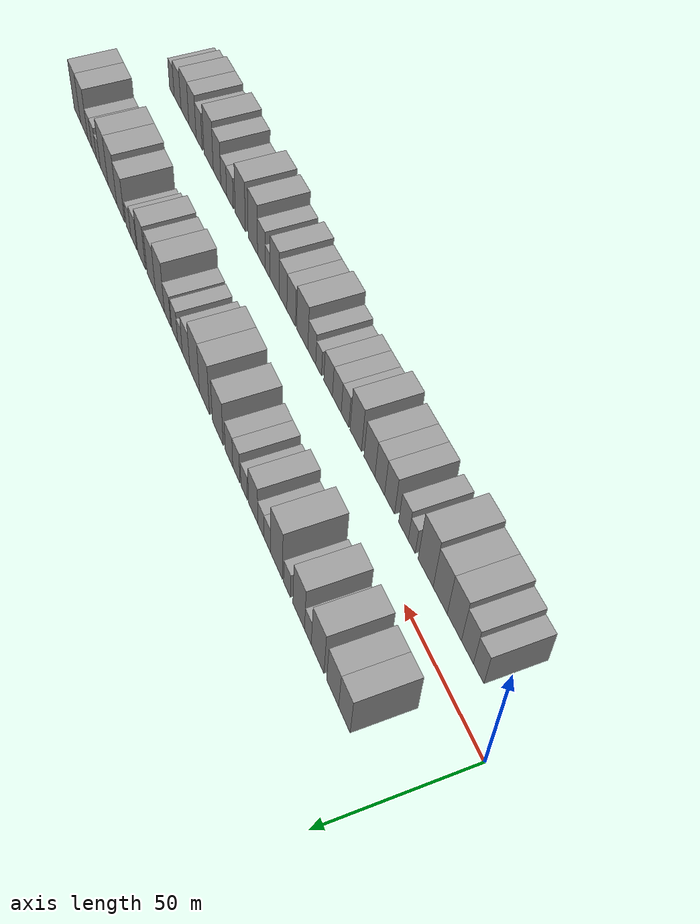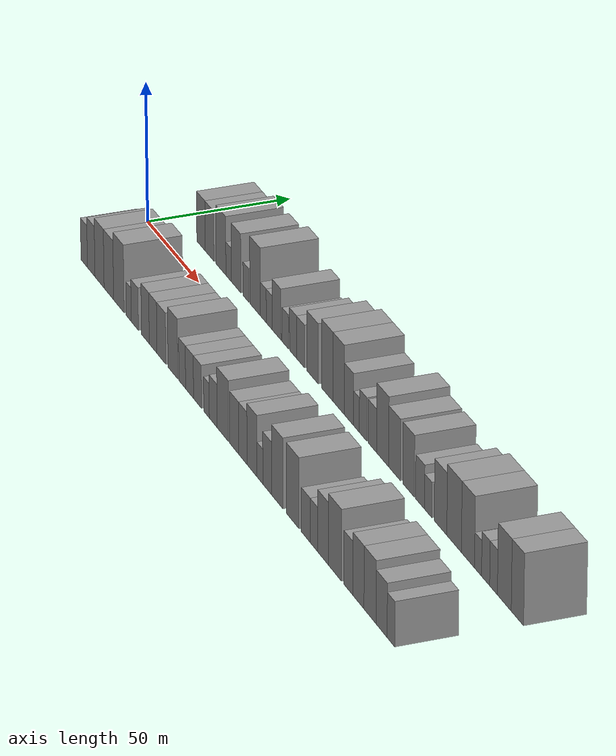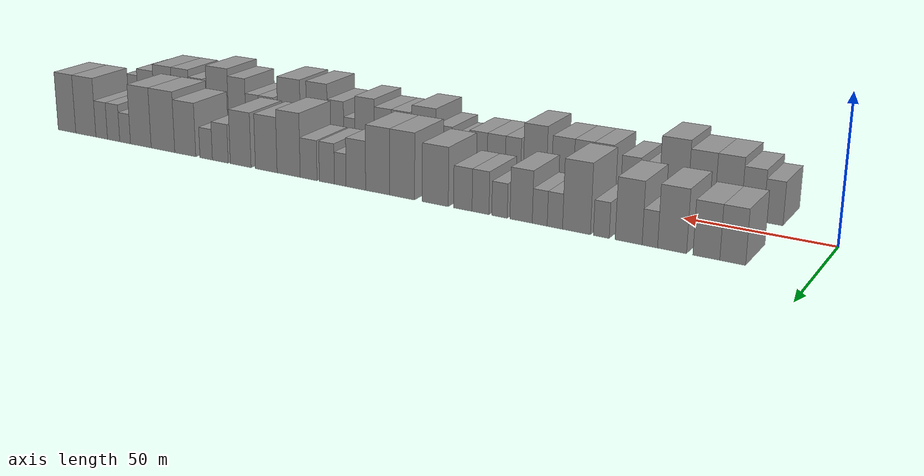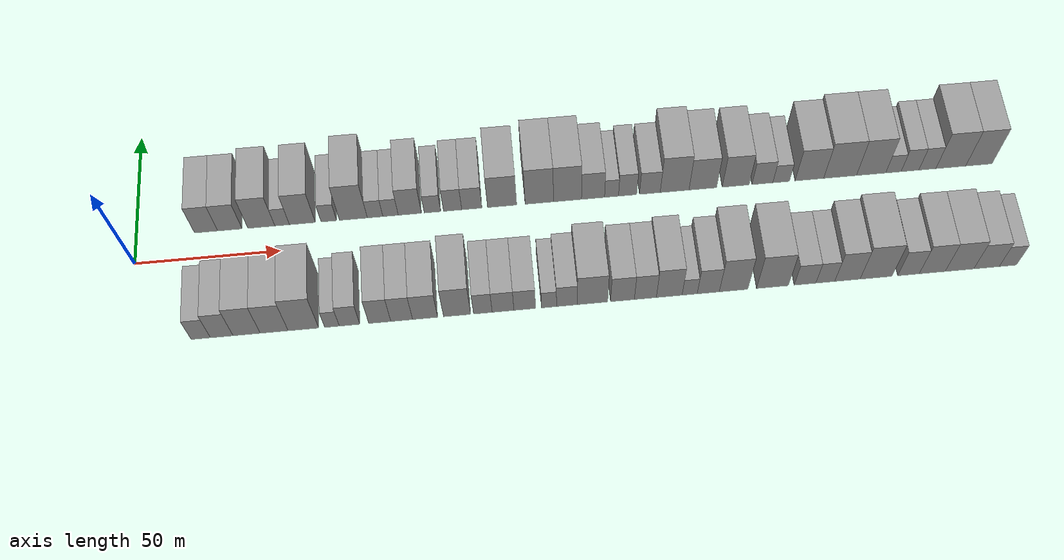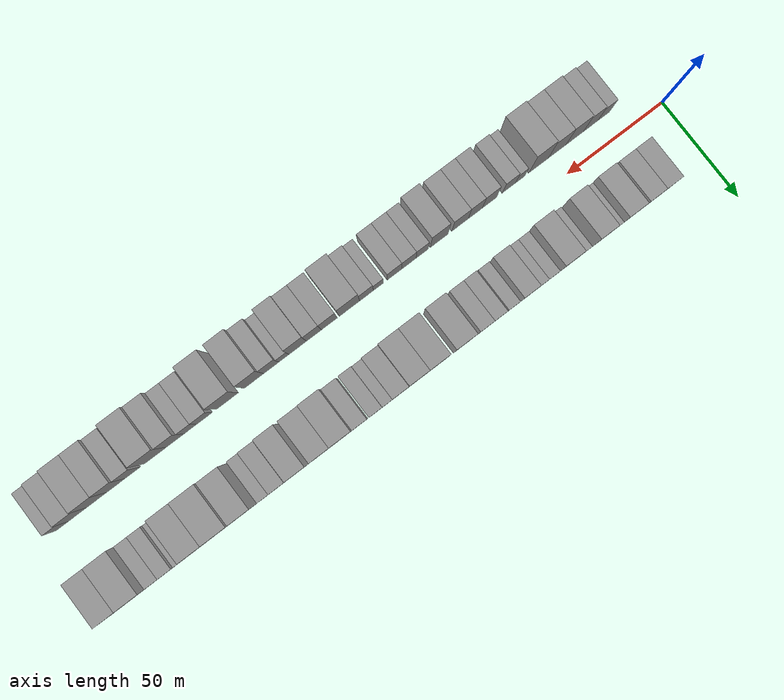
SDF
<sdf version="1.6">
 <world name="default">
  <scene>
   <sky><clouds><speed>12</speed></clouds></sky>
   <ambient>0.4 0.4 0.4 1</ambient>
   <background>0.7 0.7 0.7 1</background>
   <shadows>1</shadows>
  </scene>
  <gravity>0 0 -9.8066</gravity>
  <magnetic_field>6e-06 2.3e-05 -4.2e-05</magnetic_field>
  <physics default="0" name="default_physics" type="ode">
   <ode>
    <solver>
     <type>quick</type>
     <iters>10</iters>
     <sor>1.0</sor>
     <use_dynamic_moi_rescaling>0</use_dynamic_moi_rescaling>
    </solver>
    <constraints>
     <cfm>0</cfm>
     <erp>0.2</erp>
     <contact_max_correcting_vel>100</contact_max_correcting_vel>
     <contact_surface_layer>0.001</contact_surface_layer>
    </constraints>
   </ode>
   <max_step_size>0.004</max_step_size>
   <real_time_factor>1</real_time_factor>
   <real_time_update_rate>250</real_time_update_rate>
  </physics>
  <light name="sun" type="directional">
   <pose>0 0 10 0 0 0</pose>
   <diffuse>0.8 0.8 0.8 1</diffuse>
   <specular>0.2 0.2 0.2 1</specular>
   <attenuation>
    <range>1000</range>
    <constant>0.9</constant>
    <linear>0.01</linear>
    <quadratic>0.001</quadratic>
   </attenuation>
   <direction>-0.5 0.1 -0.9</direction>
  </light>
  <model name="building_1">
   <static>1</static>
   <pose>23.9908 20.0000 0 0.000000 0.000000 1.570796</pose>
   <link name="link">
    <pose>0 0 9.00 0 0 0</pose>
    <collision name="collision"><geometry><box><size>20.0000 7.9815 18.0000</size></box></geometry></collision>
    <visual name="visual">
     <cast_shadows>0</cast_shadows>
     <geometry><box><size>20.0000 7.9815 18.0000</size></box></geometry>
     <material>
      <script>
       <uri>model://grey_wall/materials/scripts</uri>
       <uri>model://grey_wall/materials/textures</uri>
       <name>vrc/grey_wall</name>
      </script>
     </material>
    </visual>
   </link>
  </model>
  <model name="building_2">
   <static>1</static>
   <pose>32.2059 20.0000 0 0.000000 0.000000 1.570796</pose>
   <link name="link">
    <pose>0 0 9.00 0 0 0</pose>
    <collision name="collision"><geometry><box><size>20.0000 8.4488 18.0000</size></box></geometry></collision>
    <visual name="visual">
     <cast_shadows>0</cast_shadows>
     <geometry><box><size>20.0000 8.4488 18.0000</size></box></geometry>
     <material>
      <script>
       <uri>model://grey_wall/materials/scripts</uri>
       <uri>model://grey_wall/materials/textures</uri>
       <name>vrc/grey_wall</name>
      </script>
     </material>
    </visual>
   </link>
  </model>
  <model name="building_3">
   <static>1</static>
   <pose>43.1120 20.0000 0 0.000000 0.000000 1.570796</pose>
   <link name="link">
    <pose>0 0 10.50 0 0 0</pose>
    <collision name="collision"><geometry><box><size>20.0000 9.3635 21.0000</size></box></geometry></collision>
    <visual name="visual">
     <cast_shadows>0</cast_shadows>
     <geometry><box><size>20.0000 9.3635 21.0000</size></box></geometry>
     <material>
      <script>
       <uri>model://grey_wall/materials/scripts</uri>
       <uri>model://grey_wall/materials/textures</uri>
       <name>vrc/grey_wall</name>
      </script>
     </material>
    </visual>
   </link>
  </model>
  <model name="building_4">
   <static>1</static>
   <pose>50.3294 20.0000 0 0.000000 0.000000 1.570796</pose>
   <link name="link">
    <pose>0 0 6.00 0 0 0</pose>
    <collision name="collision"><geometry><box><size>20.0000 5.0712 12.0000</size></box></geometry></collision>
    <visual name="visual">
     <cast_shadows>0</cast_shadows>
     <geometry><box><size>20.0000 5.0712 12.0000</size></box></geometry>
     <material>
      <script>
       <uri>model://grey_wall/materials/scripts</uri>
       <uri>model://grey_wall/materials/textures</uri>
       <name>vrc/grey_wall</name>
      </script>
     </material>
    </visual>
   </link>
  </model>
  <model name="building_5">
   <static>1</static>
   <pose>57.3656 20.0000 0 0.000000 0.000000 1.570796</pose>
   <link name="link">
    <pose>0 0 10.50 0 0 0</pose>
    <collision name="collision"><geometry><box><size>20.0000 9.0012 21.0000</size></box></geometry></collision>
    <visual name="visual">
     <cast_shadows>0</cast_shadows>
     <geometry><box><size>20.0000 9.0012 21.0000</size></box></geometry>
     <material>
      <script>
       <uri>model://grey_wall/materials/scripts</uri>
       <uri>model://grey_wall/materials/textures</uri>
       <name>vrc/grey_wall</name>
      </script>
     </material>
    </visual>
   </link>
  </model>
  <model name="building_6">
   <static>1</static>
   <pose>66.5707 20.0000 0 0.000000 0.000000 1.570796</pose>
   <link name="link">
    <pose>0 0 6.00 0 0 0</pose>
    <collision name="collision"><geometry><box><size>20.0000 5.4089 12.0000</size></box></geometry></collision>
    <visual name="visual">
     <cast_shadows>0</cast_shadows>
     <geometry><box><size>20.0000 5.4089 12.0000</size></box></geometry>
     <material>
      <script>
       <uri>model://grey_wall/materials/scripts</uri>
       <uri>model://grey_wall/materials/textures</uri>
       <name>vrc/grey_wall</name>
      </script>
     </material>
    </visual>
   </link>
  </model>
  <model name="building_7">
   <static>1</static>
   <pose>75.1345 20.0000 0 0.000000 0.000000 1.570796</pose>
   <link name="link">
    <pose>0 0 12.00 0 0 0</pose>
    <collision name="collision"><geometry><box><size>20.0000 9.7187 24.0000</size></box></geometry></collision>
    <visual name="visual">
     <cast_shadows>0</cast_shadows>
     <geometry><box><size>20.0000 9.7187 24.0000</size></box></geometry>
     <material>
      <script>
       <uri>model://grey_wall/materials/scripts</uri>
       <uri>model://grey_wall/materials/textures</uri>
       <name>vrc/grey_wall</name>
      </script>
     </material>
    </visual>
   </link>
  </model>
  <model name="building_8">
   <static>1</static>
   <pose>82.7058 20.0000 0 0.000000 0.000000 1.570796</pose>
   <link name="link">
    <pose>0 0 6.00 0 0 0</pose>
    <collision name="collision"><geometry><box><size>20.0000 5.4239 12.0000</size></box></geometry></collision>
    <visual name="visual">
     <cast_shadows>0</cast_shadows>
     <geometry><box><size>20.0000 5.4239 12.0000</size></box></geometry>
     <material>
      <script>
       <uri>model://grey_wall/materials/scripts</uri>
       <uri>model://grey_wall/materials/textures</uri>
       <name>vrc/grey_wall</name>
      </script>
     </material>
    </visual>
   </link>
  </model>
  <model name="building_9">
   <static>1</static>
   <pose>88.1032 20.0000 0 0.000000 0.000000 1.570796</pose>
   <link name="link">
    <pose>0 0 6.00 0 0 0</pose>
    <collision name="collision"><geometry><box><size>20.0000 5.3708 12.0000</size></box></geometry></collision>
    <visual name="visual">
     <cast_shadows>0</cast_shadows>
     <geometry><box><size>20.0000 5.3708 12.0000</size></box></geometry>
     <material>
      <script>
       <uri>model://grey_wall/materials/scripts</uri>
       <uri>model://grey_wall/materials/textures</uri>
       <name>vrc/grey_wall</name>
      </script>
     </material>
    </visual>
   </link>
  </model>
  <model name="building_10">
   <static>1</static>
   <pose>94.8376 20.0000 0 0.000000 0.000000 1.570796</pose>
   <link name="link">
    <pose>0 0 9.00 0 0 0</pose>
    <collision name="collision"><geometry><box><size>20.0000 8.0981 18.0000</size></box></geometry></collision>
    <visual name="visual">
     <cast_shadows>0</cast_shadows>
     <geometry><box><size>20.0000 8.0981 18.0000</size></box></geometry>
     <material>
      <script>
       <uri>model://grey_wall/materials/scripts</uri>
       <uri>model://grey_wall/materials/textures</uri>
       <name>vrc/grey_wall</name>
      </script>
     </material>
    </visual>
   </link>
  </model>
  <model name="building_11">
   <static>1</static>
   <pose>102.7686 20.0000 0 0.000000 0.000000 1.570796</pose>
   <link name="link">
    <pose>0 0 6.00 0 0 0</pose>
    <collision name="collision"><geometry><box><size>20.0000 5.7640 12.0000</size></box></geometry></collision>
    <visual name="visual">
     <cast_shadows>0</cast_shadows>
     <geometry><box><size>20.0000 5.7640 12.0000</size></box></geometry>
     <material>
      <script>
       <uri>model://grey_wall/materials/scripts</uri>
       <uri>model://grey_wall/materials/textures</uri>
       <name>vrc/grey_wall</name>
      </script>
     </material>
    </visual>
   </link>
  </model>
  <model name="building_12">
   <static>1</static>
   <pose>109.8444 20.0000 0 0.000000 0.000000 1.570796</pose>
   <link name="link">
    <pose>0 0 7.50 0 0 0</pose>
    <collision name="collision"><geometry><box><size>20.0000 6.3876 15.0000</size></box></geometry></collision>
    <visual name="visual">
     <cast_shadows>0</cast_shadows>
     <geometry><box><size>20.0000 6.3876 15.0000</size></box></geometry>
     <material>
      <script>
       <uri>model://grey_wall/materials/scripts</uri>
       <uri>model://grey_wall/materials/textures</uri>
       <name>vrc/grey_wall</name>
      </script>
     </material>
    </visual>
   </link>
  </model>
  <model name="building_13">
   <static>1</static>
   <pose>116.5820 20.0000 0 0.000000 0.000000 1.570796</pose>
   <link name="link">
    <pose>0 0 7.50 0 0 0</pose>
    <collision name="collision"><geometry><box><size>20.0000 7.0874 15.0000</size></box></geometry></collision>
    <visual name="visual">
     <cast_shadows>0</cast_shadows>
     <geometry><box><size>20.0000 7.0874 15.0000</size></box></geometry>
     <material>
      <script>
       <uri>model://grey_wall/materials/scripts</uri>
       <uri>model://grey_wall/materials/textures</uri>
       <name>vrc/grey_wall</name>
      </script>
     </material>
    </visual>
   </link>
  </model>
  <model name="building_14">
   <static>1</static>
   <pose>127.2377 20.0000 0 0.000000 0.000000 1.570796</pose>
   <link name="link">
    <pose>0 0 10.50 0 0 0</pose>
    <collision name="collision"><geometry><box><size>20.0000 10.2242 21.0000</size></box></geometry></collision>
    <visual name="visual">
     <cast_shadows>0</cast_shadows>
     <geometry><box><size>20.0000 10.2242 21.0000</size></box></geometry>
     <material>
      <script>
       <uri>model://grey_wall/materials/scripts</uri>
       <uri>model://grey_wall/materials/textures</uri>
       <name>vrc/grey_wall</name>
      </script>
     </material>
    </visual>
   </link>
  </model>
  <model name="building_15">
   <static>1</static>
   <pose>140.3518 20.0000 0 0.000000 0.000000 1.570796</pose>
   <link name="link">
    <pose>0 0 12.00 0 0 0</pose>
    <collision name="collision"><geometry><box><size>20.0000 10.0040 24.0000</size></box></geometry></collision>
    <visual name="visual">
     <cast_shadows>0</cast_shadows>
     <geometry><box><size>20.0000 10.0040 24.0000</size></box></geometry>
     <material>
      <script>
       <uri>model://grey_wall/materials/scripts</uri>
       <uri>model://grey_wall/materials/textures</uri>
       <name>vrc/grey_wall</name>
      </script>
     </material>
    </visual>
   </link>
  </model>
  <model name="building_16">
   <static>1</static>
   <pose>150.2946 20.0000 0 0.000000 0.000000 1.570796</pose>
   <link name="link">
    <pose>0 0 12.00 0 0 0</pose>
    <collision name="collision"><geometry><box><size>20.0000 9.8817 24.0000</size></box></geometry></collision>
    <visual name="visual">
     <cast_shadows>0</cast_shadows>
     <geometry><box><size>20.0000 9.8817 24.0000</size></box></geometry>
     <material>
      <script>
       <uri>model://grey_wall/materials/scripts</uri>
       <uri>model://grey_wall/materials/textures</uri>
       <name>vrc/grey_wall</name>
      </script>
     </material>
    </visual>
   </link>
  </model>
  <model name="building_17">
   <static>1</static>
   <pose>159.3237 20.0000 0 0.000000 0.000000 1.570796</pose>
   <link name="link">
    <pose>0 0 9.00 0 0 0</pose>
    <collision name="collision"><geometry><box><size>20.0000 8.1764 18.0000</size></box></geometry></collision>
    <visual name="visual">
     <cast_shadows>0</cast_shadows>
     <geometry><box><size>20.0000 8.1764 18.0000</size></box></geometry>
     <material>
      <script>
       <uri>model://grey_wall/materials/scripts</uri>
       <uri>model://grey_wall/materials/textures</uri>
       <name>vrc/grey_wall</name>
      </script>
     </material>
    </visual>
   </link>
  </model>
  <model name="building_18">
   <static>1</static>
   <pose>165.8892 20.0000 0 0.000000 0.000000 1.570796</pose>
   <link name="link">
    <pose>0 0 6.00 0 0 0</pose>
    <collision name="collision"><geometry><box><size>20.0000 4.9546 12.0000</size></box></geometry></collision>
    <visual name="visual">
     <cast_shadows>0</cast_shadows>
     <geometry><box><size>20.0000 4.9546 12.0000</size></box></geometry>
     <material>
      <script>
       <uri>model://grey_wall/materials/scripts</uri>
       <uri>model://grey_wall/materials/textures</uri>
       <name>vrc/grey_wall</name>
      </script>
     </material>
    </visual>
   </link>
  </model>
  <model name="building_19">
   <static>1</static>
   <pose>171.5991 20.0000 0 0.000000 0.000000 1.570796</pose>
   <link name="link">
    <pose>0 0 7.50 0 0 0</pose>
    <collision name="collision"><geometry><box><size>20.0000 6.4652 15.0000</size></box></geometry></collision>
    <visual name="visual">
     <cast_shadows>0</cast_shadows>
     <geometry><box><size>20.0000 6.4652 15.0000</size></box></geometry>
     <material>
      <script>
       <uri>model://grey_wall/materials/scripts</uri>
       <uri>model://grey_wall/materials/textures</uri>
       <name>vrc/grey_wall</name>
      </script>
     </material>
    </visual>
   </link>
  </model>
  <model name="building_20">
   <static>1</static>
   <pose>179.5096 20.0000 0 0.000000 0.000000 1.570796</pose>
   <link name="link">
    <pose>0 0 7.50 0 0 0</pose>
    <collision name="collision"><geometry><box><size>20.0000 7.3557 15.0000</size></box></geometry></collision>
    <visual name="visual">
     <cast_shadows>0</cast_shadows>
     <geometry><box><size>20.0000 7.3557 15.0000</size></box></geometry>
     <material>
      <script>
       <uri>model://grey_wall/materials/scripts</uri>
       <uri>model://grey_wall/materials/textures</uri>
       <name>vrc/grey_wall</name>
      </script>
     </material>
    </visual>
   </link>
  </model>
  <model name="building_21">
   <static>1</static>
   <pose>188.3211 20.0000 0 0.000000 0.000000 1.570796</pose>
   <link name="link">
    <pose>0 0 12.00 0 0 0</pose>
    <collision name="collision"><geometry><box><size>20.0000 10.2673 24.0000</size></box></geometry></collision>
    <visual name="visual">
     <cast_shadows>0</cast_shadows>
     <geometry><box><size>20.0000 10.2673 24.0000</size></box></geometry>
     <material>
      <script>
       <uri>model://grey_wall/materials/scripts</uri>
       <uri>model://grey_wall/materials/textures</uri>
       <name>vrc/grey_wall</name>
      </script>
     </material>
    </visual>
   </link>
  </model>
  <model name="building_22">
   <static>1</static>
   <pose>198.3743 20.0000 0 0.000000 0.000000 1.570796</pose>
   <link name="link">
    <pose>0 0 10.50 0 0 0</pose>
    <collision name="collision"><geometry><box><size>20.0000 9.8392 21.0000</size></box></geometry></collision>
    <visual name="visual">
     <cast_shadows>0</cast_shadows>
     <geometry><box><size>20.0000 9.8392 21.0000</size></box></geometry>
     <material>
      <script>
       <uri>model://grey_wall/materials/scripts</uri>
       <uri>model://grey_wall/materials/textures</uri>
       <name>vrc/grey_wall</name>
      </script>
     </material>
    </visual>
   </link>
  </model>
  <model name="building_23">
   <static>1</static>
   <pose>210.1101 20.0000 0 0.000000 0.000000 1.570796</pose>
   <link name="link">
    <pose>0 0 10.50 0 0 0</pose>
    <collision name="collision"><geometry><box><size>20.0000 9.6324 21.0000</size></box></geometry></collision>
    <visual name="visual">
     <cast_shadows>0</cast_shadows>
     <geometry><box><size>20.0000 9.6324 21.0000</size></box></geometry>
     <material>
      <script>
       <uri>model://grey_wall/materials/scripts</uri>
       <uri>model://grey_wall/materials/textures</uri>
       <name>vrc/grey_wall</name>
      </script>
     </material>
    </visual>
   </link>
  </model>
  <model name="building_24">
   <static>1</static>
   <pose>219.6738 20.0000 0 0.000000 0.000000 1.570796</pose>
   <link name="link">
    <pose>0 0 7.50 0 0 0</pose>
    <collision name="collision"><geometry><box><size>20.0000 7.4949 15.0000</size></box></geometry></collision>
    <visual name="visual">
     <cast_shadows>0</cast_shadows>
     <geometry><box><size>20.0000 7.4949 15.0000</size></box></geometry>
     <material>
      <script>
       <uri>model://grey_wall/materials/scripts</uri>
       <uri>model://grey_wall/materials/textures</uri>
       <name>vrc/grey_wall</name>
      </script>
     </material>
    </visual>
   </link>
  </model>
  <model name="building_25">
   <static>1</static>
   <pose>226.4071 20.0000 0 0.000000 0.000000 1.570796</pose>
   <link name="link">
    <pose>0 0 6.00 0 0 0</pose>
    <collision name="collision"><geometry><box><size>20.0000 5.9717 12.0000</size></box></geometry></collision>
    <visual name="visual">
     <cast_shadows>0</cast_shadows>
     <geometry><box><size>20.0000 5.9717 12.0000</size></box></geometry>
     <material>
      <script>
       <uri>model://grey_wall/materials/scripts</uri>
       <uri>model://grey_wall/materials/textures</uri>
       <name>vrc/grey_wall</name>
      </script>
     </material>
    </visual>
   </link>
  </model>
  <model name="building_26">
   <static>1</static>
   <pose>236.5378 20.0000 0 0.000000 0.000000 1.570796</pose>
   <link name="link">
    <pose>0 0 10.50 0 0 0</pose>
    <collision name="collision"><geometry><box><size>20.0000 10.2896 21.0000</size></box></geometry></collision>
    <visual name="visual">
     <cast_shadows>0</cast_shadows>
     <geometry><box><size>20.0000 10.2896 21.0000</size></box></geometry>
     <material>
      <script>
       <uri>model://grey_wall/materials/scripts</uri>
       <uri>model://grey_wall/materials/textures</uri>
       <name>vrc/grey_wall</name>
      </script>
     </material>
    </visual>
   </link>
  </model>
  <model name="building_27">
   <static>1</static>
   <pose>247.5895 20.0000 0 0.000000 0.000000 1.570796</pose>
   <link name="link">
    <pose>0 0 12.00 0 0 0</pose>
    <collision name="collision"><geometry><box><size>20.0000 11.8139 24.0000</size></box></geometry></collision>
    <visual name="visual">
     <cast_shadows>0</cast_shadows>
     <geometry><box><size>20.0000 11.8139 24.0000</size></box></geometry>
     <material>
      <script>
       <uri>model://grey_wall/materials/scripts</uri>
       <uri>model://grey_wall/materials/textures</uri>
       <name>vrc/grey_wall</name>
      </script>
     </material>
    </visual>
   </link>
  </model>
  <model name="building_28">
   <static>1</static>
   <pose>258.7789 20.0000 0 0.000000 0.000000 1.570796</pose>
   <link name="link">
    <pose>0 0 12.00 0 0 0</pose>
    <collision name="collision"><geometry><box><size>20.0000 10.5648 24.0000</size></box></geometry></collision>
    <visual name="visual">
     <cast_shadows>0</cast_shadows>
     <geometry><box><size>20.0000 10.5648 24.0000</size></box></geometry>
     <material>
      <script>
       <uri>model://grey_wall/materials/scripts</uri>
       <uri>model://grey_wall/materials/textures</uri>
       <name>vrc/grey_wall</name>
      </script>
     </material>
    </visual>
   </link>
  </model>
  <model name="building_29">
   <static>1</static>
   <pose>266.8416 20.0000 0 0.000000 0.000000 1.570796</pose>
   <link name="link">
    <pose>0 0 6.00 0 0 0</pose>
    <collision name="collision"><geometry><box><size>20.0000 5.5606 12.0000</size></box></geometry></collision>
    <visual name="visual">
     <cast_shadows>0</cast_shadows>
     <geometry><box><size>20.0000 5.5606 12.0000</size></box></geometry>
     <material>
      <script>
       <uri>model://grey_wall/materials/scripts</uri>
       <uri>model://grey_wall/materials/textures</uri>
       <name>vrc/grey_wall</name>
      </script>
     </material>
    </visual>
   </link>
  </model>
  <model name="building_30">
   <static>1</static>
   <pose>272.8393 20.0000 0 0.000000 0.000000 1.570796</pose>
   <link name="link">
    <pose>0 0 7.50 0 0 0</pose>
    <collision name="collision"><geometry><box><size>20.0000 6.4348 15.0000</size></box></geometry></collision>
    <visual name="visual">
     <cast_shadows>0</cast_shadows>
     <geometry><box><size>20.0000 6.4348 15.0000</size></box></geometry>
     <material>
      <script>
       <uri>model://grey_wall/materials/scripts</uri>
       <uri>model://grey_wall/materials/textures</uri>
       <name>vrc/grey_wall</name>
      </script>
     </material>
    </visual>
   </link>
  </model>
  <model name="building_31">
   <static>1</static>
   <pose>279.1298 20.0000 0 0.000000 0.000000 1.570796</pose>
   <link name="link">
    <pose>0 0 7.50 0 0 0</pose>
    <collision name="collision"><geometry><box><size>20.0000 6.1462 15.0000</size></box></geometry></collision>
    <visual name="visual">
     <cast_shadows>0</cast_shadows>
     <geometry><box><size>20.0000 6.1462 15.0000</size></box></geometry>
     <material>
      <script>
       <uri>model://grey_wall/materials/scripts</uri>
       <uri>model://grey_wall/materials/textures</uri>
       <name>vrc/grey_wall</name>
      </script>
     </material>
    </visual>
   </link>
  </model>
  <model name="building_32">
   <static>1</static>
   <pose>287.6257 20.0000 0 0.000000 0.000000 1.570796</pose>
   <link name="link">
    <pose>0 0 12.00 0 0 0</pose>
    <collision name="collision"><geometry><box><size>20.0000 10.8455 24.0000</size></box></geometry></collision>
    <visual name="visual">
     <cast_shadows>0</cast_shadows>
     <geometry><box><size>20.0000 10.8455 24.0000</size></box></geometry>
     <material>
      <script>
       <uri>model://grey_wall/materials/scripts</uri>
       <uri>model://grey_wall/materials/textures</uri>
       <name>vrc/grey_wall</name>
      </script>
     </material>
    </visual>
   </link>
  </model>
  <model name="building_33">
   <static>1</static>
   <pose>297.8527 20.0000 0 0.000000 0.000000 1.570796</pose>
   <link name="link">
    <pose>0 0 12.00 0 0 0</pose>
    <collision name="collision"><geometry><box><size>20.0000 9.6086 24.0000</size></box></geometry></collision>
    <visual name="visual">
     <cast_shadows>0</cast_shadows>
     <geometry><box><size>20.0000 9.6086 24.0000</size></box></geometry>
     <material>
      <script>
       <uri>model://grey_wall/materials/scripts</uri>
       <uri>model://grey_wall/materials/textures</uri>
       <name>vrc/grey_wall</name>
      </script>
     </material>
    </visual>
   </link>
  </model>
  <model name="building_34">
   <static>1</static>
   <pose>23.2014 -20.0000 0 0.000000 0.000000 1.570796</pose>
   <link name="link">
    <pose>0 0 7.50 0 0 0</pose>
    <collision name="collision"><geometry><box><size>20.0000 6.4028 15.0000</size></box></geometry></collision>
    <visual name="visual">
     <cast_shadows>0</cast_shadows>
     <geometry><box><size>20.0000 6.4028 15.0000</size></box></geometry>
     <material>
      <script>
       <uri>model://grey_wall/materials/scripts</uri>
       <uri>model://grey_wall/materials/textures</uri>
       <name>vrc/grey_wall</name>
      </script>
     </material>
    </visual>
   </link>
  </model>
  <model name="building_35">
   <static>1</static>
   <pose>30.1494 -20.0000 0 0.000000 0.000000 1.570796</pose>
   <link name="link">
    <pose>0 0 9.00 0 0 0</pose>
    <collision name="collision"><geometry><box><size>20.0000 7.4931 18.0000</size></box></geometry></collision>
    <visual name="visual">
     <cast_shadows>0</cast_shadows>
     <geometry><box><size>20.0000 7.4931 18.0000</size></box></geometry>
     <material>
      <script>
       <uri>model://grey_wall/materials/scripts</uri>
       <uri>model://grey_wall/materials/textures</uri>
       <name>vrc/grey_wall</name>
      </script>
     </material>
    </visual>
   </link>
  </model>
  <model name="building_36">
   <static>1</static>
   <pose>38.4204 -20.0000 0 0.000000 0.000000 1.570796</pose>
   <link name="link">
    <pose>0 0 10.50 0 0 0</pose>
    <collision name="collision"><geometry><box><size>20.0000 9.0489 21.0000</size></box></geometry></collision>
    <visual name="visual">
     <cast_shadows>0</cast_shadows>
     <geometry><box><size>20.0000 9.0489 21.0000</size></box></geometry>
     <material>
      <script>
       <uri>model://grey_wall/materials/scripts</uri>
       <uri>model://grey_wall/materials/textures</uri>
       <name>vrc/grey_wall</name>
      </script>
     </material>
    </visual>
   </link>
  </model>
  <model name="building_37">
   <static>1</static>
   <pose>47.6049 -20.0000 0 0.000000 0.000000 1.570796</pose>
   <link name="link">
    <pose>0 0 10.50 0 0 0</pose>
    <collision name="collision"><geometry><box><size>20.0000 9.3201 21.0000</size></box></geometry></collision>
    <visual name="visual">
     <cast_shadows>0</cast_shadows>
     <geometry><box><size>20.0000 9.3201 21.0000</size></box></geometry>
     <material>
      <script>
       <uri>model://grey_wall/materials/scripts</uri>
       <uri>model://grey_wall/materials/textures</uri>
       <name>vrc/grey_wall</name>
      </script>
     </material>
    </visual>
   </link>
  </model>
  <model name="building_38">
   <static>1</static>
   <pose>57.3783 -20.0000 0 0.000000 0.000000 1.570796</pose>
   <link name="link">
    <pose>0 0 12.00 0 0 0</pose>
    <collision name="collision"><geometry><box><size>20.0000 10.2267 24.0000</size></box></geometry></collision>
    <visual name="visual">
     <cast_shadows>0</cast_shadows>
     <geometry><box><size>20.0000 10.2267 24.0000</size></box></geometry>
     <material>
      <script>
       <uri>model://grey_wall/materials/scripts</uri>
       <uri>model://grey_wall/materials/textures</uri>
       <name>vrc/grey_wall</name>
      </script>
     </material>
    </visual>
   </link>
  </model>
  <model name="building_39">
   <static>1</static>
   <pose>66.9360 -20.0000 0 0.000000 0.000000 1.570796</pose>
   <link name="link">
    <pose>0 0 6.00 0 0 0</pose>
    <collision name="collision"><geometry><box><size>20.0000 4.8887 12.0000</size></box></geometry></collision>
    <visual name="visual">
     <cast_shadows>0</cast_shadows>
     <geometry><box><size>20.0000 4.8887 12.0000</size></box></geometry>
     <material>
      <script>
       <uri>model://grey_wall/materials/scripts</uri>
       <uri>model://grey_wall/materials/textures</uri>
       <name>vrc/grey_wall</name>
      </script>
     </material>
    </visual>
   </link>
  </model>
  <model name="building_40">
   <static>1</static>
   <pose>72.8177 -20.0000 0 0.000000 0.000000 1.570796</pose>
   <link name="link">
    <pose>0 0 7.50 0 0 0</pose>
    <collision name="collision"><geometry><box><size>20.0000 6.8747 15.0000</size></box></geometry></collision>
    <visual name="visual">
     <cast_shadows>0</cast_shadows>
     <geometry><box><size>20.0000 6.8747 15.0000</size></box></geometry>
     <material>
      <script>
       <uri>model://grey_wall/materials/scripts</uri>
       <uri>model://grey_wall/materials/textures</uri>
       <name>vrc/grey_wall</name>
      </script>
     </material>
    </visual>
   </link>
  </model>
  <model name="building_41">
   <static>1</static>
   <pose>82.9561 -20.0000 0 0.000000 0.000000 1.570796</pose>
   <link name="link">
    <pose>0 0 9.00 0 0 0</pose>
    <collision name="collision"><geometry><box><size>20.0000 7.4022 18.0000</size></box></geometry></collision>
    <visual name="visual">
     <cast_shadows>0</cast_shadows>
     <geometry><box><size>20.0000 7.4022 18.0000</size></box></geometry>
     <material>
      <script>
       <uri>model://grey_wall/materials/scripts</uri>
       <uri>model://grey_wall/materials/textures</uri>
       <name>vrc/grey_wall</name>
      </script>
     </material>
    </visual>
   </link>
  </model>
  <model name="building_42">
   <static>1</static>
   <pose>90.3048 -20.0000 0 0.000000 0.000000 1.570796</pose>
   <link name="link">
    <pose>0 0 9.00 0 0 0</pose>
    <collision name="collision"><geometry><box><size>20.0000 7.2952 18.0000</size></box></geometry></collision>
    <visual name="visual">
     <cast_shadows>0</cast_shadows>
     <geometry><box><size>20.0000 7.2952 18.0000</size></box></geometry>
     <material>
      <script>
       <uri>model://grey_wall/materials/scripts</uri>
       <uri>model://grey_wall/materials/textures</uri>
       <name>vrc/grey_wall</name>
      </script>
     </material>
    </visual>
   </link>
  </model>
  <model name="building_43">
   <static>1</static>
   <pose>98.1776 -20.0000 0 0.000000 0.000000 1.570796</pose>
   <link name="link">
    <pose>0 0 9.00 0 0 0</pose>
    <collision name="collision"><geometry><box><size>20.0000 8.4504 18.0000</size></box></geometry></collision>
    <visual name="visual">
     <cast_shadows>0</cast_shadows>
     <geometry><box><size>20.0000 8.4504 18.0000</size></box></geometry>
     <material>
      <script>
       <uri>model://grey_wall/materials/scripts</uri>
       <uri>model://grey_wall/materials/textures</uri>
       <name>vrc/grey_wall</name>
      </script>
     </material>
    </visual>
   </link>
  </model>
  <model name="building_44">
   <static>1</static>
   <pose>108.9797 -20.0000 0 0.000000 0.000000 1.570796</pose>
   <link name="link">
    <pose>0 0 10.50 0 0 0</pose>
    <collision name="collision"><geometry><box><size>20.0000 9.1536 21.0000</size></box></geometry></collision>
    <visual name="visual">
     <cast_shadows>0</cast_shadows>
     <geometry><box><size>20.0000 9.1536 21.0000</size></box></geometry>
     <material>
      <script>
       <uri>model://grey_wall/materials/scripts</uri>
       <uri>model://grey_wall/materials/textures</uri>
       <name>vrc/grey_wall</name>
      </script>
     </material>
    </visual>
   </link>
  </model>
  <model name="building_45">
   <static>1</static>
   <pose>117.6859 -20.0000 0 0.000000 0.000000 1.570796</pose>
   <link name="link">
    <pose>0 0 7.50 0 0 0</pose>
    <collision name="collision"><geometry><box><size>20.0000 6.2589 15.0000</size></box></geometry></collision>
    <visual name="visual">
     <cast_shadows>0</cast_shadows>
     <geometry><box><size>20.0000 6.2589 15.0000</size></box></geometry>
     <material>
      <script>
       <uri>model://grey_wall/materials/scripts</uri>
       <uri>model://grey_wall/materials/textures</uri>
       <name>vrc/grey_wall</name>
      </script>
     </material>
    </visual>
   </link>
  </model>
  <model name="building_46">
   <static>1</static>
   <pose>124.4950 -20.0000 0 0.000000 0.000000 1.570796</pose>
   <link name="link">
    <pose>0 0 7.50 0 0 0</pose>
    <collision name="collision"><geometry><box><size>20.0000 7.3592 15.0000</size></box></geometry></collision>
    <visual name="visual">
     <cast_shadows>0</cast_shadows>
     <geometry><box><size>20.0000 7.3592 15.0000</size></box></geometry>
     <material>
      <script>
       <uri>model://grey_wall/materials/scripts</uri>
       <uri>model://grey_wall/materials/textures</uri>
       <name>vrc/grey_wall</name>
      </script>
     </material>
    </visual>
   </link>
  </model>
  <model name="building_47">
   <static>1</static>
   <pose>131.8659 -20.0000 0 0.000000 0.000000 1.570796</pose>
   <link name="link">
    <pose>0 0 7.50 0 0 0</pose>
    <collision name="collision"><geometry><box><size>20.0000 7.3825 15.0000</size></box></geometry></collision>
    <visual name="visual">
     <cast_shadows>0</cast_shadows>
     <geometry><box><size>20.0000 7.3825 15.0000</size></box></geometry>
     <material>
      <script>
       <uri>model://grey_wall/materials/scripts</uri>
       <uri>model://grey_wall/materials/textures</uri>
       <name>vrc/grey_wall</name>
      </script>
     </material>
    </visual>
   </link>
  </model>
  <model name="building_48">
   <static>1</static>
   <pose>140.1054 -20.0000 0 0.000000 0.000000 1.570796</pose>
   <link name="link">
    <pose>0 0 6.00 0 0 0</pose>
    <collision name="collision"><geometry><box><size>20.0000 5.0965 12.0000</size></box></geometry></collision>
    <visual name="visual">
     <cast_shadows>0</cast_shadows>
     <geometry><box><size>20.0000 5.0965 12.0000</size></box></geometry>
     <material>
      <script>
       <uri>model://grey_wall/materials/scripts</uri>
       <uri>model://grey_wall/materials/textures</uri>
       <name>vrc/grey_wall</name>
      </script>
     </material>
    </visual>
   </link>
  </model>
  <model name="building_49">
   <static>1</static>
   <pose>146.1739 -20.0000 0 0.000000 0.000000 1.570796</pose>
   <link name="link">
    <pose>0 0 7.50 0 0 0</pose>
    <collision name="collision"><geometry><box><size>20.0000 7.0406 15.0000</size></box></geometry></collision>
    <visual name="visual">
     <cast_shadows>0</cast_shadows>
     <geometry><box><size>20.0000 7.0406 15.0000</size></box></geometry>
     <material>
      <script>
       <uri>model://grey_wall/materials/scripts</uri>
       <uri>model://grey_wall/materials/textures</uri>
       <name>vrc/grey_wall</name>
      </script>
     </material>
    </visual>
   </link>
  </model>
  <model name="building_50">
   <static>1</static>
   <pose>154.8709 -20.0000 0 0.000000 0.000000 1.570796</pose>
   <link name="link">
    <pose>0 0 10.50 0 0 0</pose>
    <collision name="collision"><geometry><box><size>20.0000 10.3533 21.0000</size></box></geometry></collision>
    <visual name="visual">
     <cast_shadows>0</cast_shadows>
     <geometry><box><size>20.0000 10.3533 21.0000</size></box></geometry>
     <material>
      <script>
       <uri>model://grey_wall/materials/scripts</uri>
       <uri>model://grey_wall/materials/textures</uri>
       <name>vrc/grey_wall</name>
      </script>
     </material>
    </visual>
   </link>
  </model>
  <model name="building_51">
   <static>1</static>
   <pose>165.1053 -20.0000 0 0.000000 0.000000 1.570796</pose>
   <link name="link">
    <pose>0 0 9.00 0 0 0</pose>
    <collision name="collision"><geometry><box><size>20.0000 8.1156 18.0000</size></box></geometry></collision>
    <visual name="visual">
     <cast_shadows>0</cast_shadows>
     <geometry><box><size>20.0000 8.1156 18.0000</size></box></geometry>
     <material>
      <script>
       <uri>model://grey_wall/materials/scripts</uri>
       <uri>model://grey_wall/materials/textures</uri>
       <name>vrc/grey_wall</name>
      </script>
     </material>
    </visual>
   </link>
  </model>
  <model name="building_52">
   <static>1</static>
   <pose>172.9138 -20.0000 0 0.000000 0.000000 1.570796</pose>
   <link name="link">
    <pose>0 0 9.00 0 0 0</pose>
    <collision name="collision"><geometry><box><size>20.0000 7.5015 18.0000</size></box></geometry></collision>
    <visual name="visual">
     <cast_shadows>0</cast_shadows>
     <geometry><box><size>20.0000 7.5015 18.0000</size></box></geometry>
     <material>
      <script>
       <uri>model://grey_wall/materials/scripts</uri>
       <uri>model://grey_wall/materials/textures</uri>
       <name>vrc/grey_wall</name>
      </script>
     </material>
    </visual>
   </link>
  </model>
  <model name="building_53">
   <static>1</static>
   <pose>181.0718 -20.0000 0 0.000000 0.000000 1.570796</pose>
   <link name="link">
    <pose>0 0 10.50 0 0 0</pose>
    <collision name="collision"><geometry><box><size>20.0000 8.8145 21.0000</size></box></geometry></collision>
    <visual name="visual">
     <cast_shadows>0</cast_shadows>
     <geometry><box><size>20.0000 8.8145 21.0000</size></box></geometry>
     <material>
      <script>
       <uri>model://grey_wall/materials/scripts</uri>
       <uri>model://grey_wall/materials/textures</uri>
       <name>vrc/grey_wall</name>
      </script>
     </material>
    </visual>
   </link>
  </model>
  <model name="building_54">
   <static>1</static>
   <pose>188.0635 -20.0000 0 0.000000 0.000000 1.570796</pose>
   <link name="link">
    <pose>0 0 6.00 0 0 0</pose>
    <collision name="collision"><geometry><box><size>20.0000 5.1688 12.0000</size></box></geometry></collision>
    <visual name="visual">
     <cast_shadows>0</cast_shadows>
     <geometry><box><size>20.0000 5.1688 12.0000</size></box></geometry>
     <material>
      <script>
       <uri>model://grey_wall/materials/scripts</uri>
       <uri>model://grey_wall/materials/textures</uri>
       <name>vrc/grey_wall</name>
      </script>
     </material>
    </visual>
   </link>
  </model>
  <model name="building_55">
   <static>1</static>
   <pose>194.4369 -20.0000 0 0.000000 0.000000 1.570796</pose>
   <link name="link">
    <pose>0 0 9.00 0 0 0</pose>
    <collision name="collision"><geometry><box><size>20.0000 7.5782 18.0000</size></box></geometry></collision>
    <visual name="visual">
     <cast_shadows>0</cast_shadows>
     <geometry><box><size>20.0000 7.5782 18.0000</size></box></geometry>
     <material>
      <script>
       <uri>model://grey_wall/materials/scripts</uri>
       <uri>model://grey_wall/materials/textures</uri>
       <name>vrc/grey_wall</name>
      </script>
     </material>
    </visual>
   </link>
  </model>
  <model name="building_56">
   <static>1</static>
   <pose>203.1438 -20.0000 0 0.000000 0.000000 1.570796</pose>
   <link name="link">
    <pose>0 0 12.00 0 0 0</pose>
    <collision name="collision"><geometry><box><size>20.0000 9.8355 24.0000</size></box></geometry></collision>
    <visual name="visual">
     <cast_shadows>0</cast_shadows>
     <geometry><box><size>20.0000 9.8355 24.0000</size></box></geometry>
     <material>
      <script>
       <uri>model://grey_wall/materials/scripts</uri>
       <uri>model://grey_wall/materials/textures</uri>
       <name>vrc/grey_wall</name>
      </script>
     </material>
    </visual>
   </link>
  </model>
  <model name="building_57">
   <static>1</static>
   <pose>216.5512 -20.0000 0 0.000000 0.000000 1.570796</pose>
   <link name="link">
    <pose>0 0 12.00 0 0 0</pose>
    <collision name="collision"><geometry><box><size>20.0000 10.9795 24.0000</size></box></geometry></collision>
    <visual name="visual">
     <cast_shadows>0</cast_shadows>
     <geometry><box><size>20.0000 10.9795 24.0000</size></box></geometry>
     <material>
      <script>
       <uri>model://grey_wall/materials/scripts</uri>
       <uri>model://grey_wall/materials/textures</uri>
       <name>vrc/grey_wall</name>
      </script>
     </material>
    </visual>
   </link>
  </model>
  <model name="building_58">
   <static>1</static>
   <pose>227.7856 -20.0000 0 0.000000 0.000000 1.570796</pose>
   <link name="link">
    <pose>0 0 7.50 0 0 0</pose>
    <collision name="collision"><geometry><box><size>20.0000 7.4893 15.0000</size></box></geometry></collision>
    <visual name="visual">
     <cast_shadows>0</cast_shadows>
     <geometry><box><size>20.0000 7.4893 15.0000</size></box></geometry>
     <material>
      <script>
       <uri>model://grey_wall/materials/scripts</uri>
       <uri>model://grey_wall/materials/textures</uri>
       <name>vrc/grey_wall</name>
      </script>
     </material>
    </visual>
   </link>
  </model>
  <model name="building_59">
   <static>1</static>
   <pose>234.7899 -20.0000 0 0.000000 0.000000 1.570796</pose>
   <link name="link">
    <pose>0 0 7.50 0 0 0</pose>
    <collision name="collision"><geometry><box><size>20.0000 6.5193 15.0000</size></box></geometry></collision>
    <visual name="visual">
     <cast_shadows>0</cast_shadows>
     <geometry><box><size>20.0000 6.5193 15.0000</size></box></geometry>
     <material>
      <script>
       <uri>model://grey_wall/materials/scripts</uri>
       <uri>model://grey_wall/materials/textures</uri>
       <name>vrc/grey_wall</name>
      </script>
     </material>
    </visual>
   </link>
  </model>
  <model name="building_60">
   <static>1</static>
   <pose>242.4502 -20.0000 0 0.000000 0.000000 1.570796</pose>
   <link name="link">
    <pose>0 0 10.50 0 0 0</pose>
    <collision name="collision"><geometry><box><size>20.0000 8.8014 21.0000</size></box></geometry></collision>
    <visual name="visual">
     <cast_shadows>0</cast_shadows>
     <geometry><box><size>20.0000 8.8014 21.0000</size></box></geometry>
     <material>
      <script>
       <uri>model://grey_wall/materials/scripts</uri>
       <uri>model://grey_wall/materials/textures</uri>
       <name>vrc/grey_wall</name>
      </script>
     </material>
    </visual>
   </link>
  </model>
  <model name="building_61">
   <static>1</static>
   <pose>252.3788 -20.0000 0 0.000000 0.000000 1.570796</pose>
   <link name="link">
    <pose>0 0 12.00 0 0 0</pose>
    <collision name="collision"><geometry><box><size>20.0000 11.0557 24.0000</size></box></geometry></collision>
    <visual name="visual">
     <cast_shadows>0</cast_shadows>
     <geometry><box><size>20.0000 11.0557 24.0000</size></box></geometry>
     <material>
      <script>
       <uri>model://grey_wall/materials/scripts</uri>
       <uri>model://grey_wall/materials/textures</uri>
       <name>vrc/grey_wall</name>
      </script>
     </material>
    </visual>
   </link>
  </model>
  <model name="building_62">
   <static>1</static>
   <pose>263.6545 -20.0000 0 0.000000 0.000000 1.570796</pose>
   <link name="link">
    <pose>0 0 9.00 0 0 0</pose>
    <collision name="collision"><geometry><box><size>20.0000 7.4956 18.0000</size></box></geometry></collision>
    <visual name="visual">
     <cast_shadows>0</cast_shadows>
     <geometry><box><size>20.0000 7.4956 18.0000</size></box></geometry>
     <material>
      <script>
       <uri>model://grey_wall/materials/scripts</uri>
       <uri>model://grey_wall/materials/textures</uri>
       <name>vrc/grey_wall</name>
      </script>
     </material>
    </visual>
   </link>
  </model>
  <model name="building_63">
   <static>1</static>
   <pose>271.9244 -20.0000 0 0.000000 0.000000 1.570796</pose>
   <link name="link">
    <pose>0 0 10.50 0 0 0</pose>
    <collision name="collision"><geometry><box><size>20.0000 9.0444 21.0000</size></box></geometry></collision>
    <visual name="visual">
     <cast_shadows>0</cast_shadows>
     <geometry><box><size>20.0000 9.0444 21.0000</size></box></geometry>
     <material>
      <script>
       <uri>model://grey_wall/materials/scripts</uri>
       <uri>model://grey_wall/materials/textures</uri>
       <name>vrc/grey_wall</name>
      </script>
     </material>
    </visual>
   </link>
  </model>
  <model name="building_64">
   <static>1</static>
   <pose>281.4494 -20.0000 0 0.000000 0.000000 1.570796</pose>
   <link name="link">
    <pose>0 0 10.50 0 0 0</pose>
    <collision name="collision"><geometry><box><size>20.0000 10.0056 21.0000</size></box></geometry></collision>
    <visual name="visual">
     <cast_shadows>0</cast_shadows>
     <geometry><box><size>20.0000 10.0056 21.0000</size></box></geometry>
     <material>
      <script>
       <uri>model://grey_wall/materials/scripts</uri>
       <uri>model://grey_wall/materials/textures</uri>
       <name>vrc/grey_wall</name>
      </script>
     </material>
    </visual>
   </link>
  </model>
  <model name="building_65">
   <static>1</static>
   <pose>290.8951 -20.0000 0 0.000000 0.000000 1.570796</pose>
   <link name="link">
    <pose>0 0 9.00 0 0 0</pose>
    <collision name="collision"><geometry><box><size>20.0000 8.8858 18.0000</size></box></geometry></collision>
    <visual name="visual">
     <cast_shadows>0</cast_shadows>
     <geometry><box><size>20.0000 8.8858 18.0000</size></box></geometry>
     <material>
      <script>
       <uri>model://grey_wall/materials/scripts</uri>
       <uri>model://grey_wall/materials/textures</uri>
       <name>vrc/grey_wall</name>
      </script>
     </material>
    </visual>
   </link>
  </model>
  <model name="building_66">
   <static>1</static>
   <pose>298.3809 -20.0000 0 0.000000 0.000000 1.570796</pose>
   <link name="link">
    <pose>0 0 7.50 0 0 0</pose>
    <collision name="collision"><geometry><box><size>20.0000 6.0858 15.0000</size></box></geometry></collision>
    <visual name="visual">
     <cast_shadows>0</cast_shadows>
     <geometry><box><size>20.0000 6.0858 15.0000</size></box></geometry>
     <material>
      <script>
       <uri>model://grey_wall/materials/scripts</uri>
       <uri>model://grey_wall/materials/textures</uri>
       <name>vrc/grey_wall</name>
      </script>
     </material>
    </visual>
   </link>
  </model>
 </world>
</sdf>
